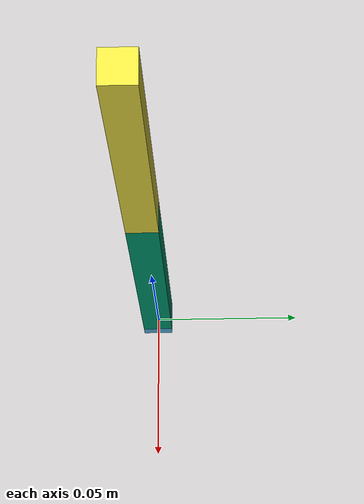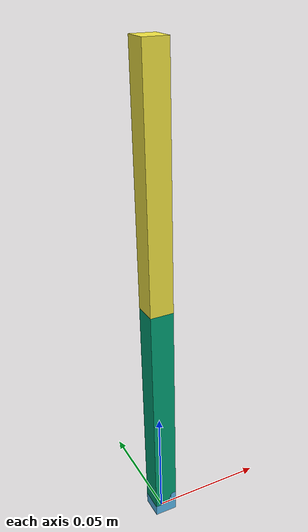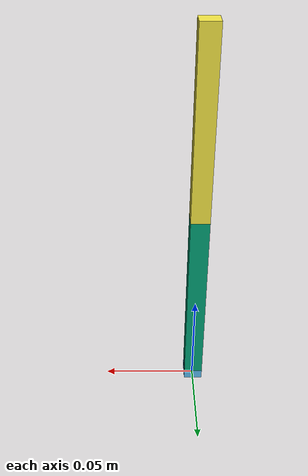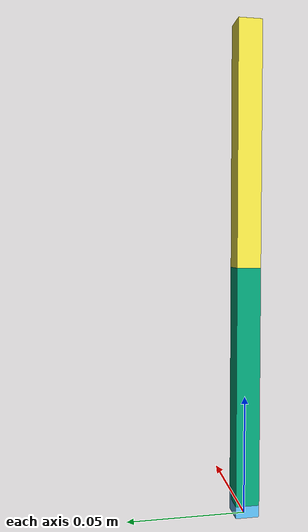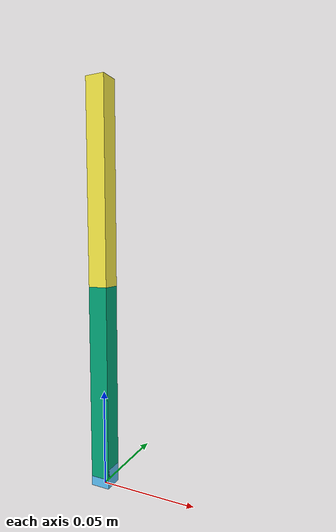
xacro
<?xml version="1.0"?>
<robot name="vv_kuwamai" xmlns:xacro="http://ros.org/wiki/xacro">
  <xacro:include filename="$(find vv_kuwamai_description)/urdf/base/base.urdf.xacro"/>
  <xacro:include filename="$(find vv_kuwamai_description)/urdf/arm/arm.urdf.xacro"/>
  <link name="world"/>

  <xacro:base parent="world">
    <origin xyz="0 0 0.005"/>
  </xacro:base>

  <xacro:arm prefix="1" parent="base_link">
    <origin xyz="0 0 0" rpy="0 0 0" />
    <axis xyz="0 1 0" />
  </xacro:arm>

  <xacro:arm prefix="2" parent="arm_1">
    <origin xyz="0 0 0.1" rpy="0 0 0" />
    <axis xyz="0 1 0" />
  </xacro:arm>
</robot>

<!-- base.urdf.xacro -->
<robot xmlns:xacro="http://ros.org/wiki/xacro">
  <xacro:macro name="base" params="parent *joint_origin">
    <joint name="joint_0" type="revolute">
      <xacro:insert_block name="joint_origin"/>
      <axis xyz="0 0 1" />
      <parent link="${parent}"/>
      <child link="base_link"/>

      <limit effort="30" velocity="1.0" lower="-1.5" upper="1.5" />
    </joint>

    <link name="base_link">
      <visual>
        <geometry>
          <box size="0.01 0.01 0.01"/>
        </geometry>
      </visual>

      <collision>
        <geometry>
          <box size="0.01 0.01 0.01"/>
        </geometry>
      </collision>

      <inertial>
        <origin xyz="0 0 0"/>
        <mass value="0.6"/>
        <inertia ixx="1e-3" ixy="0" ixz="0" iyy="1e-3" iyz="0" izz="1e-3"/>
      </inertial>
    </link>
  </xacro:macro>
</robot>

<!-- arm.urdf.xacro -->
<robot xmlns:xacro="http://ros.org/wiki/xacro">
  <xacro:macro name="arm" params="prefix parent *joint_origin *joint_axis">
    <joint name="joint_${prefix}" type="revolute">
      <xacro:insert_block name="joint_origin" />
      <xacro:insert_block name="joint_axis" />
      <parent link="${parent}" />
      <child link="arm_${prefix}" />

      <limit effort="30" velocity="1.0" lower="-1.5" upper="1.5" />
    </joint>

    <link name="arm_${prefix}">
      <visual>
        <origin xyz="0 0 0.05" rpy="0 0 0" />
        <geometry>
          <box size="0.01 0.01 0.1"/>
        </geometry>
      </visual>

      <collision>
        <origin xyz="0 0 0.05" rpy="0 0 0" />
        <geometry>
          <box size="0.01 0.01 0.1"/>
        </geometry>
      </collision>

      <inertial>
        <origin xyz="0.0 0.0 0.0" />
        <mass value="0.500"/>
        <inertia ixx="0.0013541667" ixy="0" ixz="0" iyy="0.0013541667" iyz="0" izz="0.0025"/>
      </inertial>
    </link>
  </xacro:macro>
</robot>
